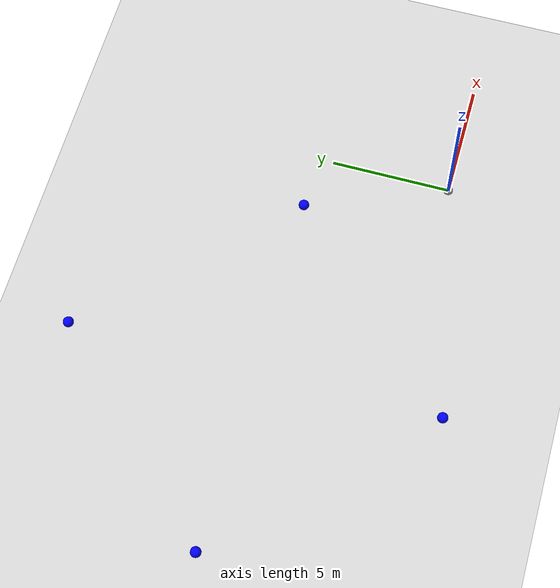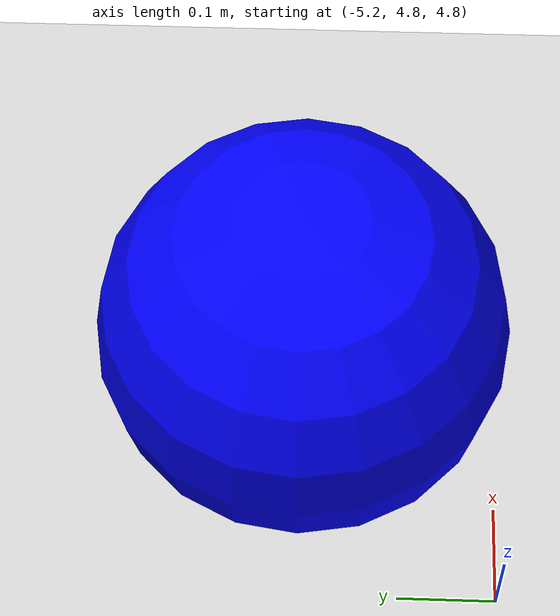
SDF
<sdf version="1.5">
 <world name="default">
  <physics type="ode">
   <ode>
    <solver><type>quick</type><iters>100</iters><sor>1.0</sor></solver>
    <constraints>
     <cfm>0.0</cfm>
     <erp>0.9</erp>
     <contact_max_correcting_vel>0.1</contact_max_correcting_vel>
     <contact_surface_layer>0.0</contact_surface_layer>
    </constraints>
   </ode>
   <real_time_update_rate>500</real_time_update_rate>
   <max_step_size>0.0020</max_step_size>
  </physics>
  <model name="ground_plane">
   <static>true</static>
   <link name="link">
    <collision name="collision">
     <geometry><plane><normal>0 0 1</normal><size>5000 5000</size></plane></geometry>
     <surface><friction><ode><mu>1</mu><mu2>1</mu2></ode></friction></surface>
    </collision>
    <visual name="runway">
     <pose>000 0 0.005 0 0 0</pose>
     <cast_shadows>false</cast_shadows>
     <geometry><plane><normal>0 0 1</normal><size>1829 45</size></plane></geometry>
     <material>
      <script><uri>file://media/materials/scripts/gazebo.material</uri><name>Gazebo/Runway</name></script>
     </material>
    </visual>
    <visual name="grass">
     <pose>0 0 -0.1 0 0 0</pose>
     <cast_shadows>false</cast_shadows>
     <geometry><plane><normal>0 0 1</normal><size>5000 5000</size></plane></geometry>
     <material>
      <script><uri>file://media/materials/scripts/gazebo.material</uri><name>Gazebo/Grass</name></script>
     </material>
    </visual>
   </link>
  </model>
  <include><uri>model://sun</uri></include>
  <model name="origin.origin">
   <link name="link">
    <inertial>
     <inertia><ixx>0.1</ixx><ixy>0</ixy><ixz>0</ixz><iyy>0.1</iyy><iyz>0</iyz><izz>0.1</izz></inertia>
     <mass>1</mass>
    </inertial>
    <gravity>0</gravity>
    <visual name="visual">
     <geometry><sphere><radius>0.2</radius></sphere></geometry>
     <material>
      <script><name>Gazebo/Grey</name><uri>file://media/materials/scripts/gazebo.material</uri></script>
      <shader type="pixel"><normal_map>__default__</normal_map></shader>
      <ambient>0.3 0.3 0.3 1</ambient>
      <diffuse>1.0 1.0 1.0 1</diffuse>
      <specular>0.01 0.01 0.01 1</specular>
      <emissive>0 0 0 1</emissive>
     </material>
     <transparency>0.05</transparency>
    </visual>
   </link>
   <static>0</static>
  </model>
  <model name="traj_1.0">
   <pose>-5.0 5.0 5 0 0 0</pose>
   <link name="link">
    <inertial>
     <inertia><ixx>0.1</ixx><ixy>0</ixy><ixz>0</ixz><iyy>0.1</iyy><iyz>0</iyz><izz>0.1</izz></inertia>
     <mass>1</mass>
    </inertial>
    <gravity>0</gravity>
    <visual name="visual">
     <geometry><sphere><radius>0.2</radius></sphere></geometry>
     <material>
      <script><name>Gazebo/Grey</name><uri>file://media/materials/scripts/gazebo.material</uri></script>
      <shader type="pixel"><normal_map>__default__</normal_map></shader>
      <ambient>0.3 0.3 0.3 1</ambient>
      <diffuse>0.0 0.0 1.0 1</diffuse>
      <specular>0.01 0.01 0.01 1</specular>
      <emissive>0 0 0 1</emissive>
     </material>
     <transparency>0.05</transparency>
    </visual>
   </link>
   <static>0</static>
  </model>
  <model name="traj_1.0">
   <pose>-5.0 5.0 5 0 0 0</pose>
   <link name="link">
    <inertial>
     <inertia><ixx>0.1</ixx><ixy>0</ixy><ixz>0</ixz><iyy>0.1</iyy><iyz>0</iyz><izz>0.1</izz></inertia>
     <mass>1</mass>
    </inertial>
    <gravity>0</gravity>
    <visual name="visual">
     <geometry><sphere><radius>0.2</radius></sphere></geometry>
     <material>
      <script><name>Gazebo/Grey</name><uri>file://media/materials/scripts/gazebo.material</uri></script>
      <shader type="pixel"><normal_map>__default__</normal_map></shader>
      <ambient>0.3 0.3 0.3 1</ambient>
      <diffuse>0.0 0.0 1.0 1</diffuse>
      <specular>0.01 0.01 0.01 1</specular>
      <emissive>0 0 0 1</emissive>
     </material>
     <transparency>0.05</transparency>
    </visual>
   </link>
   <static>0</static>
  </model>
  <model name="traj_1.1">
   <pose>-12.071067811865476 -2.0710678118654746 5 0 0 0</pose>
   <link name="link">
    <inertial>
     <inertia><ixx>0.1</ixx><ixy>0</ixy><ixz>0</ixz><iyy>0.1</iyy><iyz>0</iyz><izz>0.1</izz></inertia>
     <mass>1</mass>
    </inertial>
    <gravity>0</gravity>
    <visual name="visual">
     <geometry><sphere><radius>0.2</radius></sphere></geometry>
     <material>
      <script><name>Gazebo/Grey</name><uri>file://media/materials/scripts/gazebo.material</uri></script>
      <shader type="pixel"><normal_map>__default__</normal_map></shader>
      <ambient>0.3 0.3 0.3 1</ambient>
      <diffuse>0.0 0.0 1.0 1</diffuse>
      <specular>0.01 0.01 0.01 1</specular>
      <emissive>0 0 0 1</emissive>
     </material>
     <transparency>0.05</transparency>
    </visual>
   </link>
   <static>0</static>
  </model>
  <model name="traj_1.0">
   <pose>-5.0 5.0 5 0 0 0</pose>
   <link name="link">
    <inertial>
     <inertia><ixx>0.1</ixx><ixy>0</ixy><ixz>0</ixz><iyy>0.1</iyy><iyz>0</iyz><izz>0.1</izz></inertia>
     <mass>1</mass>
    </inertial>
    <gravity>0</gravity>
    <visual name="visual">
     <geometry><sphere><radius>0.2</radius></sphere></geometry>
     <material>
      <script><name>Gazebo/Grey</name><uri>file://media/materials/scripts/gazebo.material</uri></script>
      <shader type="pixel"><normal_map>__default__</normal_map></shader>
      <ambient>0.3 0.3 0.3 1</ambient>
      <diffuse>0.0 0.0 1.0 1</diffuse>
      <specular>0.01 0.01 0.01 1</specular>
      <emissive>0 0 0 1</emissive>
     </material>
     <transparency>0.05</transparency>
    </visual>
   </link>
   <static>0</static>
  </model>
  <model name="traj_1.1">
   <pose>-12.071067811865476 -2.0710678118654746 5 0 0 0</pose>
   <link name="link">
    <inertial>
     <inertia><ixx>0.1</ixx><ixy>0</ixy><ixz>0</ixz><iyy>0.1</iyy><iyz>0</iyz><izz>0.1</izz></inertia>
     <mass>1</mass>
    </inertial>
    <gravity>0</gravity>
    <visual name="visual">
     <geometry><sphere><radius>0.2</radius></sphere></geometry>
     <material>
      <script><name>Gazebo/Grey</name><uri>file://media/materials/scripts/gazebo.material</uri></script>
      <shader type="pixel"><normal_map>__default__</normal_map></shader>
      <ambient>0.3 0.3 0.3 1</ambient>
      <diffuse>0.0 0.0 1.0 1</diffuse>
      <specular>0.01 0.01 0.01 1</specular>
      <emissive>0 0 0 1</emissive>
     </material>
     <transparency>0.05</transparency>
    </visual>
   </link>
   <static>0</static>
  </model>
  <model name="traj_1.2">
   <pose>-19.14213562373095 5.000000000000001 5 0 0 0</pose>
   <link name="link">
    <inertial>
     <inertia><ixx>0.1</ixx><ixy>0</ixy><ixz>0</ixz><iyy>0.1</iyy><iyz>0</iyz><izz>0.1</izz></inertia>
     <mass>1</mass>
    </inertial>
    <gravity>0</gravity>
    <visual name="visual">
     <geometry><sphere><radius>0.2</radius></sphere></geometry>
     <material>
      <script><name>Gazebo/Grey</name><uri>file://media/materials/scripts/gazebo.material</uri></script>
      <shader type="pixel"><normal_map>__default__</normal_map></shader>
      <ambient>0.3 0.3 0.3 1</ambient>
      <diffuse>0.0 0.0 1.0 1</diffuse>
      <specular>0.01 0.01 0.01 1</specular>
      <emissive>0 0 0 1</emissive>
     </material>
     <transparency>0.05</transparency>
    </visual>
   </link>
   <static>0</static>
  </model>
  <model name="traj_1.0">
   <pose>-5.0 5.0 5 0 0 0</pose>
   <link name="link">
    <inertial>
     <inertia><ixx>0.1</ixx><ixy>0</ixy><ixz>0</ixz><iyy>0.1</iyy><iyz>0</iyz><izz>0.1</izz></inertia>
     <mass>1</mass>
    </inertial>
    <gravity>0</gravity>
    <visual name="visual">
     <geometry><sphere><radius>0.2</radius></sphere></geometry>
     <material>
      <script><name>Gazebo/Grey</name><uri>file://media/materials/scripts/gazebo.material</uri></script>
      <shader type="pixel"><normal_map>__default__</normal_map></shader>
      <ambient>0.3 0.3 0.3 1</ambient>
      <diffuse>0.0 0.0 1.0 1</diffuse>
      <specular>0.01 0.01 0.01 1</specular>
      <emissive>0 0 0 1</emissive>
     </material>
     <transparency>0.05</transparency>
    </visual>
   </link>
   <static>0</static>
  </model>
  <model name="traj_1.1">
   <pose>-12.071067811865476 -2.0710678118654746 5 0 0 0</pose>
   <link name="link">
    <inertial>
     <inertia><ixx>0.1</ixx><ixy>0</ixy><ixz>0</ixz><iyy>0.1</iyy><iyz>0</iyz><izz>0.1</izz></inertia>
     <mass>1</mass>
    </inertial>
    <gravity>0</gravity>
    <visual name="visual">
     <geometry><sphere><radius>0.2</radius></sphere></geometry>
     <material>
      <script><name>Gazebo/Grey</name><uri>file://media/materials/scripts/gazebo.material</uri></script>
      <shader type="pixel"><normal_map>__default__</normal_map></shader>
      <ambient>0.3 0.3 0.3 1</ambient>
      <diffuse>0.0 0.0 1.0 1</diffuse>
      <specular>0.01 0.01 0.01 1</specular>
      <emissive>0 0 0 1</emissive>
     </material>
     <transparency>0.05</transparency>
    </visual>
   </link>
   <static>0</static>
  </model>
  <model name="traj_1.2">
   <pose>-19.14213562373095 5.000000000000001 5 0 0 0</pose>
   <link name="link">
    <inertial>
     <inertia><ixx>0.1</ixx><ixy>0</ixy><ixz>0</ixz><iyy>0.1</iyy><iyz>0</iyz><izz>0.1</izz></inertia>
     <mass>1</mass>
    </inertial>
    <gravity>0</gravity>
    <visual name="visual">
     <geometry><sphere><radius>0.2</radius></sphere></geometry>
     <material>
      <script><name>Gazebo/Grey</name><uri>file://media/materials/scripts/gazebo.material</uri></script>
      <shader type="pixel"><normal_map>__default__</normal_map></shader>
      <ambient>0.3 0.3 0.3 1</ambient>
      <diffuse>0.0 0.0 1.0 1</diffuse>
      <specular>0.01 0.01 0.01 1</specular>
      <emissive>0 0 0 1</emissive>
     </material>
     <transparency>0.05</transparency>
    </visual>
   </link>
   <static>0</static>
  </model>
  <model name="traj_1.3">
   <pose>-12.071067811865476 12.071067811865476 5 0 0 0</pose>
   <link name="link">
    <inertial>
     <inertia><ixx>0.1</ixx><ixy>0</ixy><ixz>0</ixz><iyy>0.1</iyy><iyz>0</iyz><izz>0.1</izz></inertia>
     <mass>1</mass>
    </inertial>
    <gravity>0</gravity>
    <visual name="visual">
     <geometry><sphere><radius>0.2</radius></sphere></geometry>
     <material>
      <script><name>Gazebo/Grey</name><uri>file://media/materials/scripts/gazebo.material</uri></script>
      <shader type="pixel"><normal_map>__default__</normal_map></shader>
      <ambient>0.3 0.3 0.3 1</ambient>
      <diffuse>0.0 0.0 1.0 1</diffuse>
      <specular>0.01 0.01 0.01 1</specular>
      <emissive>0 0 0 1</emissive>
     </material>
     <transparency>0.05</transparency>
    </visual>
   </link>
   <static>0</static>
  </model>
  <model name="traj_1.0">
   <pose>-5.0 5.0 5 0 0 0</pose>
   <link name="link">
    <inertial>
     <inertia><ixx>0.1</ixx><ixy>0</ixy><ixz>0</ixz><iyy>0.1</iyy><iyz>0</iyz><izz>0.1</izz></inertia>
     <mass>1</mass>
    </inertial>
    <gravity>0</gravity>
    <visual name="visual">
     <geometry><sphere><radius>0.2</radius></sphere></geometry>
     <material>
      <script><name>Gazebo/Grey</name><uri>file://media/materials/scripts/gazebo.material</uri></script>
      <shader type="pixel"><normal_map>__default__</normal_map></shader>
      <ambient>0.3 0.3 0.3 1</ambient>
      <diffuse>0.0 0.0 1.0 1</diffuse>
      <specular>0.01 0.01 0.01 1</specular>
      <emissive>0 0 0 1</emissive>
     </material>
     <transparency>0.05</transparency>
    </visual>
   </link>
   <static>0</static>
  </model>
  <model name="traj_1.1">
   <pose>-12.071067811865476 -2.0710678118654746 5 0 0 0</pose>
   <link name="link">
    <inertial>
     <inertia><ixx>0.1</ixx><ixy>0</ixy><ixz>0</ixz><iyy>0.1</iyy><iyz>0</iyz><izz>0.1</izz></inertia>
     <mass>1</mass>
    </inertial>
    <gravity>0</gravity>
    <visual name="visual">
     <geometry><sphere><radius>0.2</radius></sphere></geometry>
     <material>
      <script><name>Gazebo/Grey</name><uri>file://media/materials/scripts/gazebo.material</uri></script>
      <shader type="pixel"><normal_map>__default__</normal_map></shader>
      <ambient>0.3 0.3 0.3 1</ambient>
      <diffuse>0.0 0.0 1.0 1</diffuse>
      <specular>0.01 0.01 0.01 1</specular>
      <emissive>0 0 0 1</emissive>
     </material>
     <transparency>0.05</transparency>
    </visual>
   </link>
   <static>0</static>
  </model>
  <model name="traj_1.2">
   <pose>-19.14213562373095 5.000000000000001 5 0 0 0</pose>
   <link name="link">
    <inertial>
     <inertia><ixx>0.1</ixx><ixy>0</ixy><ixz>0</ixz><iyy>0.1</iyy><iyz>0</iyz><izz>0.1</izz></inertia>
     <mass>1</mass>
    </inertial>
    <gravity>0</gravity>
    <visual name="visual">
     <geometry><sphere><radius>0.2</radius></sphere></geometry>
     <material>
      <script><name>Gazebo/Grey</name><uri>file://media/materials/scripts/gazebo.material</uri></script>
      <shader type="pixel"><normal_map>__default__</normal_map></shader>
      <ambient>0.3 0.3 0.3 1</ambient>
      <diffuse>0.0 0.0 1.0 1</diffuse>
      <specular>0.01 0.01 0.01 1</specular>
      <emissive>0 0 0 1</emissive>
     </material>
     <transparency>0.05</transparency>
    </visual>
   </link>
   <static>0</static>
  </model>
  <model name="traj_1.3">
   <pose>-12.071067811865476 12.071067811865476 5 0 0 0</pose>
   <link name="link">
    <inertial>
     <inertia><ixx>0.1</ixx><ixy>0</ixy><ixz>0</ixz><iyy>0.1</iyy><iyz>0</iyz><izz>0.1</izz></inertia>
     <mass>1</mass>
    </inertial>
    <gravity>0</gravity>
    <visual name="visual">
     <geometry><sphere><radius>0.2</radius></sphere></geometry>
     <material>
      <script><name>Gazebo/Grey</name><uri>file://media/materials/scripts/gazebo.material</uri></script>
      <shader type="pixel"><normal_map>__default__</normal_map></shader>
      <ambient>0.3 0.3 0.3 1</ambient>
      <diffuse>0.0 0.0 1.0 1</diffuse>
      <specular>0.01 0.01 0.01 1</specular>
      <emissive>0 0 0 1</emissive>
     </material>
     <transparency>0.05</transparency>
    </visual>
   </link>
   <static>0</static>
  </model>
  <model name="traj_1.4">
   <pose>-5.0 5.0 5 0 0 0</pose>
   <link name="link">
    <inertial>
     <inertia><ixx>0.1</ixx><ixy>0</ixy><ixz>0</ixz><iyy>0.1</iyy><iyz>0</iyz><izz>0.1</izz></inertia>
     <mass>1</mass>
    </inertial>
    <gravity>0</gravity>
    <visual name="visual">
     <geometry><sphere><radius>0.2</radius></sphere></geometry>
     <material>
      <script><name>Gazebo/Grey</name><uri>file://media/materials/scripts/gazebo.material</uri></script>
      <shader type="pixel"><normal_map>__default__</normal_map></shader>
      <ambient>0.3 0.3 0.3 1</ambient>
      <diffuse>0.0 0.0 1.0 1</diffuse>
      <specular>0.01 0.01 0.01 1</specular>
      <emissive>0 0 0 1</emissive>
     </material>
     <transparency>0.05</transparency>
    </visual>
   </link>
   <static>0</static>
  </model>
 </world>
</sdf>
